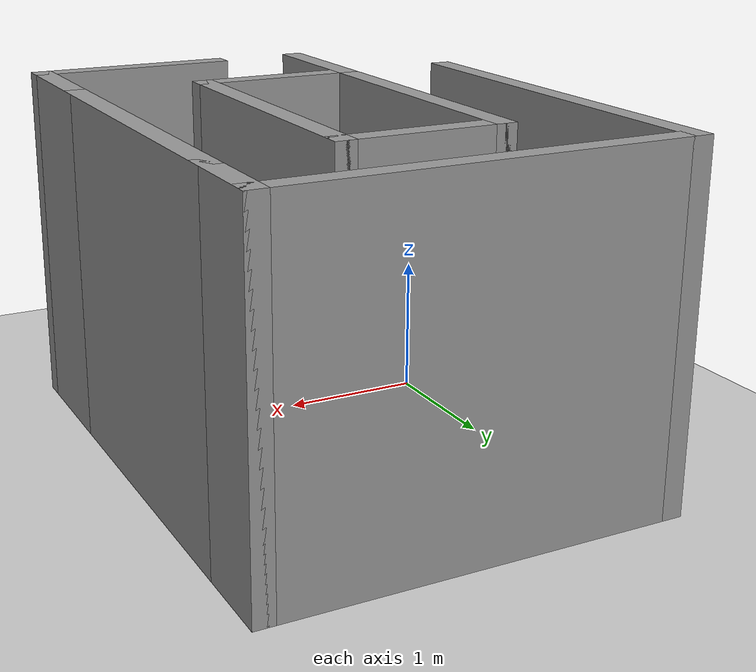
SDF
<sdf version="1.6">
 <world name="default">
  <light name="sun" type="directional">
   <pose>0 0 10 0 -0 0</pose>
   <diffuse>0.8 0.8 0.8 1</diffuse>
   <specular>0.1 0.1 0.1 1</specular>
   <attenuation>
    <range>1000</range>
    <constant>0.9</constant>
    <linear>0.01</linear>
    <quadratic>0.001</quadratic>
   </attenuation>
   <direction>-0.5 0.5 -1</direction>
  </light>
  <model name="ground_plane">
   <static>1</static>
   <link name="link">
    <collision name="collision">
     <geometry><plane><normal>0 0 1</normal><size>100 100</size></plane></geometry>
     <surface><friction><ode><mu>100</mu><mu2>50</mu2></ode></friction></surface>
    </collision>
    <visual name="visual">
     <cast_shadows>0</cast_shadows>
     <geometry><plane><normal>0 0 1</normal><size>100 100</size></plane></geometry>
     <material>
      <script><uri>file://media/materials/scripts/gazebo.material</uri><name>Gazebo/Grey</name></script>
     </material>
    </visual>
   </link>
  </model>
  <gravity>0 0 -9.8</gravity>
  <magnetic_field>6e-06 2.3e-05 -4.2e-05</magnetic_field>
  <atmosphere type="adiabatic"/>
  <physics name="default_physics" default="0" type="ode">
   <max_step_size>0.001</max_step_size>
   <real_time_factor>1</real_time_factor>
   <real_time_update_rate>1000</real_time_update_rate>
  </physics>
  <scene><ambient>0.4 0.4 0.4 1</ambient><background>0.7 0.7 0.7 1</background><shadows>1</shadows></scene>
  <spherical_coordinates>
   <surface_model>EARTH_WGS84</surface_model>
   <latitude_deg>0</latitude_deg>
   <longitude_deg>0</longitude_deg>
   <elevation>0</elevation>
   <heading_deg>0</heading_deg>
  </spherical_coordinates>
  <model name="maze_big">
   <pose>1.04239 0.774619 0 0 -0 0</pose>
   <link name="Wall_0">
    <collision name="Wall_0_Collision">
     <geometry><box><size>3 0.15 2.5</size></box></geometry>
     <pose>0 0 1.25 0 -0 0</pose>
    </collision>
    <visual name="Wall_0_Visual">
     <pose>0 0 1.25 0 -0 0</pose>
     <geometry><box><size>3 0.15 2.5</size></box></geometry>
     <material>
      <script><uri>file://media/materials/scripts/gazebo.material</uri><name>Gazebo/Grey</name></script>
      <ambient>1 1 1 1</ambient>
     </material>
    </visual>
    <pose>-1.425 0.475 0 0 -0 1.5708</pose>
   </link>
   <link name="Wall_1">
    <collision name="Wall_1_Collision">
     <geometry><box><size>3 0.15 2.5</size></box></geometry>
     <pose>0 0 1.25 0 -0 0</pose>
    </collision>
    <visual name="Wall_1_Visual">
     <pose>0 0 1.25 0 -0 0</pose>
     <geometry><box><size>3 0.15 2.5</size></box></geometry>
     <material>
      <script><uri>file://media/materials/scripts/gazebo.material</uri><name>Gazebo/Grey</name></script>
      <ambient>1 1 1 1</ambient>
     </material>
    </visual>
    <pose>0 1.9 0 0 -0 0</pose>
   </link>
   <link name="Wall_11">
    <collision name="Wall_11_Collision">
     <geometry><box><size>1 0.15 2.5</size></box></geometry>
     <pose>0 0 1.25 0 -0 0</pose>
    </collision>
    <visual name="Wall_11_Visual">
     <pose>0 0 1.25 0 -0 0</pose>
     <geometry><box><size>1 0.15 2.5</size></box></geometry>
     <material>
      <script><uri>file://media/materials/scripts/gazebo.material</uri><name>Gazebo/Grey</name></script>
      <ambient>1 1 1 1</ambient>
     </material>
    </visual>
    <pose>1.425 -1.475 0 0 0 -1.5708</pose>
   </link>
   <link name="Wall_12">
    <collision name="Wall_12_Collision">
     <geometry><box><size>1.5 0.15 2.5</size></box></geometry>
     <pose>0 0 1.25 0 -0 0</pose>
    </collision>
    <visual name="Wall_12_Visual">
     <pose>0 0 1.25 0 -0 0</pose>
     <geometry><box><size>1.5 0.15 2.5</size></box></geometry>
     <material>
      <script><uri>file://media/materials/scripts/gazebo.material</uri><name>Gazebo/Grey</name></script>
      <ambient>1 1 1 1</ambient>
     </material>
    </visual>
    <pose>0.75 -1.9 0 0 -0 3.14159</pose>
   </link>
   <link name="Wall_2">
    <collision name="Wall_2_Collision">
     <geometry><box><size>0.75 0.15 2.5</size></box></geometry>
     <pose>0 0 1.25 0 -0 0</pose>
    </collision>
    <visual name="Wall_2_Visual">
     <pose>0 0 1.25 0 -0 0</pose>
     <geometry><box><size>0.75 0.15 2.5</size></box></geometry>
     <material>
      <script><uri>file://media/materials/scripts/gazebo.material</uri><name>Gazebo/Grey</name></script>
      <ambient>1 1 1 1</ambient>
     </material>
    </visual>
    <pose>1.425 1.6 0 0 0 -1.5708</pose>
   </link>
   <link name="Wall_3">
    <collision name="Wall_3_Collision">
     <geometry><box><size>2.5 0.15 2.5</size></box></geometry>
     <pose>0 0 1.25 0 -0 0</pose>
    </collision>
    <visual name="Wall_3_Visual">
     <pose>0 0 1.25 0 -0 0</pose>
     <geometry><box><size>2.5 0.15 2.5</size></box></geometry>
     <material>
      <script><uri>file://media/materials/scripts/gazebo.material</uri><name>Gazebo/Grey</name></script>
      <ambient>1 1 1 1</ambient>
     </material>
    </visual>
    <pose>1.425 0.125 0 0 0 -1.5708</pose>
   </link>
   <link name="Wall_5">
    <collision name="Wall_5_Collision">
     <geometry><box><size>2.25 0.15 2.5</size></box></geometry>
     <pose>0 0 1.25 0 -0 0</pose>
    </collision>
    <visual name="Wall_5_Visual">
     <pose>0 0 1.25 0 -0 0</pose>
     <geometry><box><size>2.25 0.15 2.5</size></box></geometry>
     <material>
      <script><uri>file://media/materials/scripts/gazebo.material</uri><name>Gazebo/Grey</name></script>
      <ambient>1 1 1 1</ambient>
     </material>
    </visual>
    <pose>-0.595 0.04 0 0 -0 1.5708</pose>
   </link>
   <link name="Wall_6">
    <collision name="Wall_6_Collision">
     <geometry><box><size>1.25 0.15 2.5</size></box></geometry>
     <pose>0 0 1.25 0 -0 0</pose>
    </collision>
    <visual name="Wall_6_Visual">
     <pose>0 0 1.25 0 -0 0</pose>
     <geometry><box><size>1.25 0.15 2.5</size></box></geometry>
     <material>
      <script><uri>file://media/materials/scripts/gazebo.material</uri><name>Gazebo/Grey</name></script>
      <ambient>1 1 1 1</ambient>
     </material>
    </visual>
    <pose>-0.045 1.09 0 0 -0 0</pose>
   </link>
   <link name="Wall_7">
    <collision name="Wall_7_Collision">
     <geometry><box><size>2.25 0.15 2.5</size></box></geometry>
     <pose>0 0 1.25 0 -0 0</pose>
    </collision>
    <visual name="Wall_7_Visual">
     <pose>0 0 1.25 0 -0 0</pose>
     <geometry><box><size>2.25 0.15 2.5</size></box></geometry>
     <material>
      <script><uri>file://media/materials/scripts/gazebo.material</uri><name>Gazebo/Grey</name></script>
      <ambient>1 1 1 1</ambient>
     </material>
    </visual>
    <pose>0.505 0.04 0 0 0 -1.5708</pose>
   </link>
   <link name="Wall_8">
    <collision name="Wall_8_Collision">
     <geometry><box><size>1.25 0.15 2.5</size></box></geometry>
     <pose>0 0 1.25 0 -0 0</pose>
    </collision>
    <visual name="Wall_8_Visual">
     <pose>0 0 1.25 0 -0 0</pose>
     <geometry><box><size>1.25 0.15 2.5</size></box></geometry>
     <material>
      <script><uri>file://media/materials/scripts/gazebo.material</uri><name>Gazebo/Grey</name></script>
      <ambient>1 1 1 1</ambient>
     </material>
    </visual>
    <pose>-0.045 -1.01 0 0 -0 3.14159</pose>
   </link>
   <link name="Wall_9">
    <collision name="Wall_9_Collision">
     <geometry><box><size>1 0.15 2.5</size></box></geometry>
     <pose>0 0 1.25 0 -0 0</pose>
    </collision>
    <visual name="Wall_9_Visual">
     <pose>0 0 1.25 0 -0 0</pose>
     <geometry><box><size>1 0.15 2.5</size></box></geometry>
     <material>
      <script><uri>file://media/materials/scripts/gazebo.material</uri><name>Gazebo/Grey</name></script>
      <ambient>1 1 1 1</ambient>
     </material>
    </visual>
    <pose>-0.595 -1.435 0 0 0 -1.5708</pose>
   </link>
   <static>1</static>
  </model>
 </world>
</sdf>
